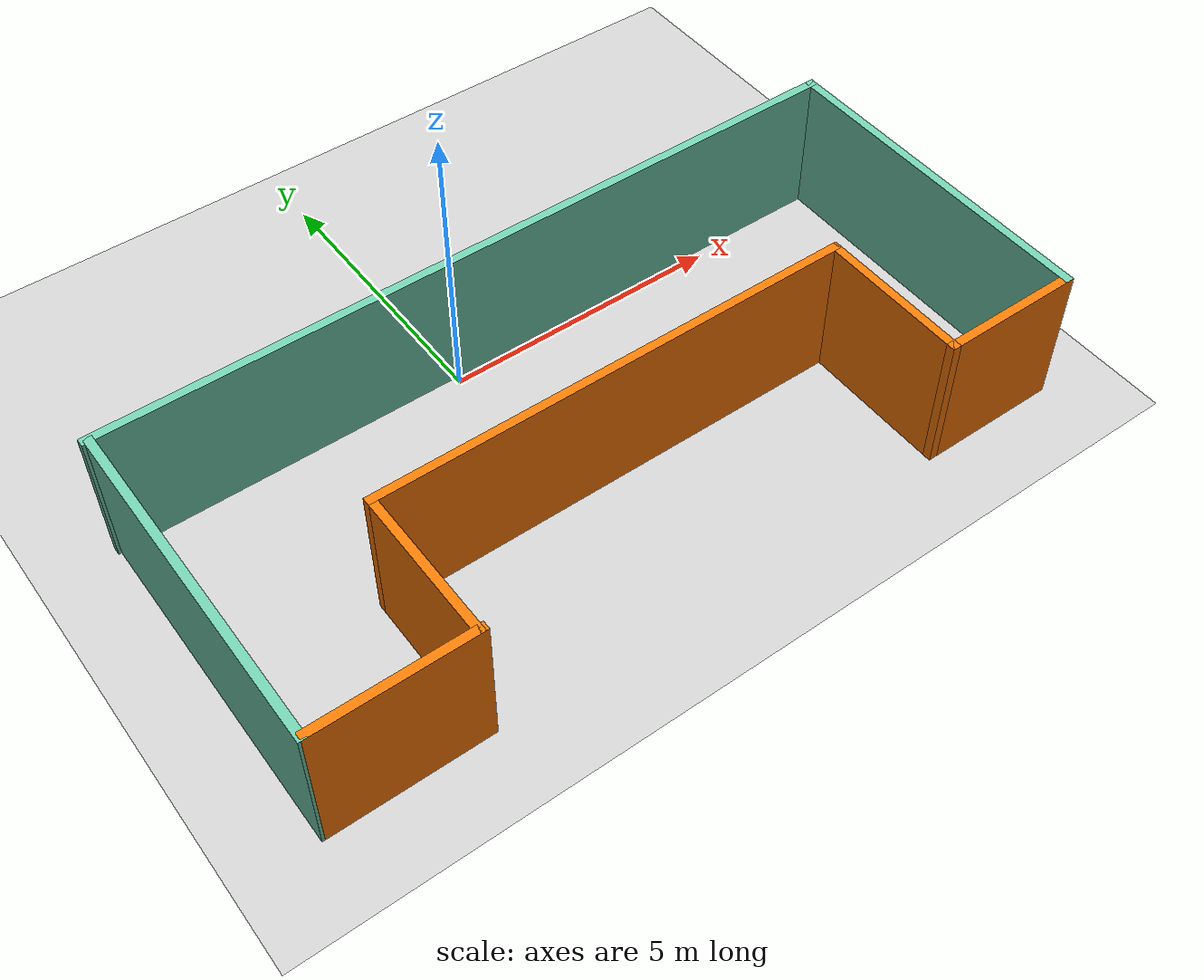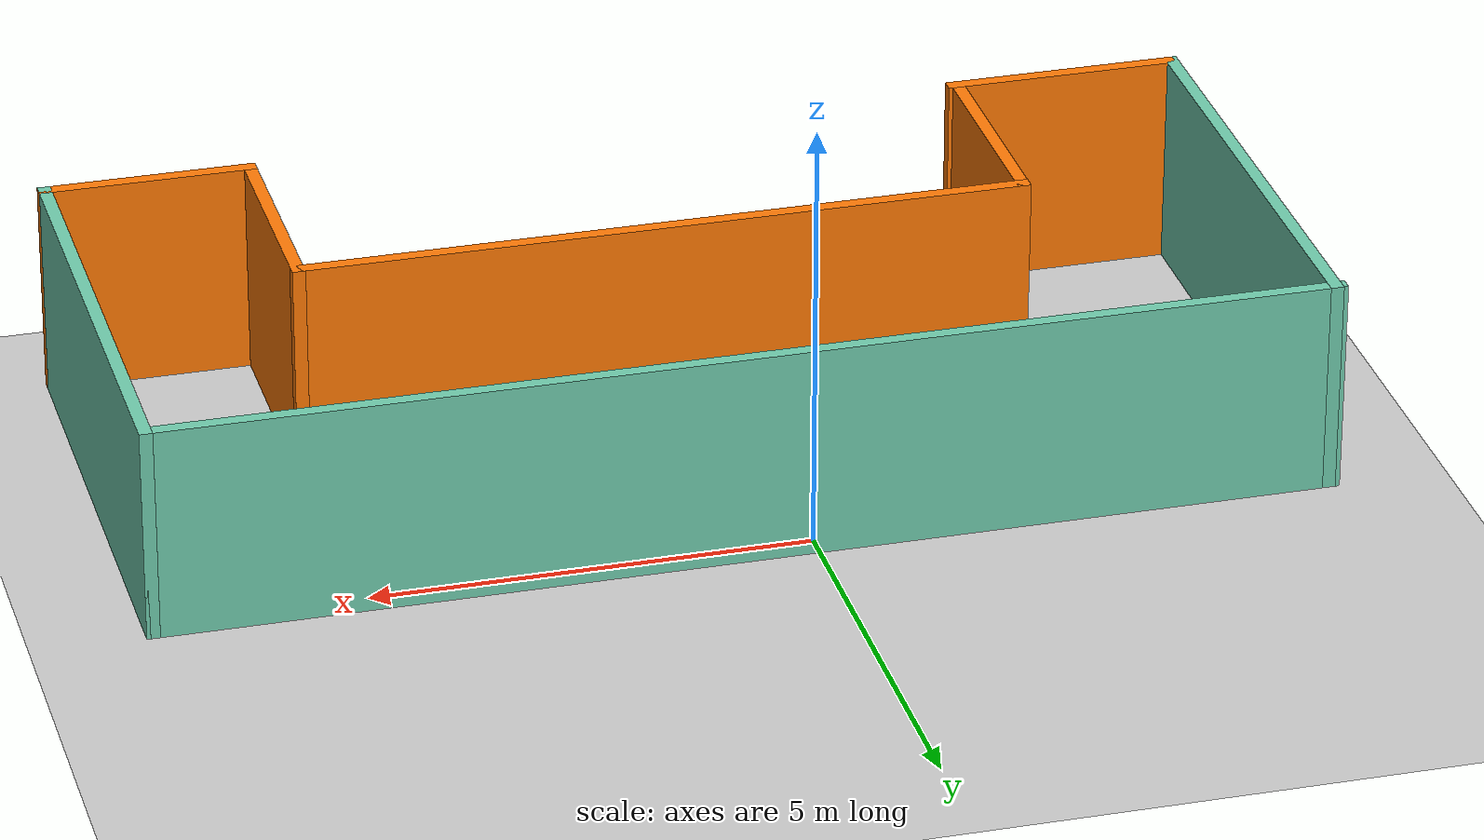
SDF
<sdf version="1.6">
 <world name="default">
  <light name="sun" type="directional">
   <pose>0 0 10 0 -0 0</pose>
   <diffuse>0.8 0.8 0.8 1</diffuse>
   <specular>0.2 0.2 0.2 1</specular>
   <attenuation>
    <range>1000</range>
    <constant>0.9</constant>
    <linear>0.01</linear>
    <quadratic>0.001</quadratic>
   </attenuation>
   <direction>-0.5 0.1 -0.9</direction>
  </light>
  <model name="ground_plane">
   <static>1</static>
   <link name="link">
    <collision name="collision">
     <geometry><plane><normal>0 0 1</normal><size>100 100</size></plane></geometry>
     <surface>
      <contact><collide_bitmask>65535</collide_bitmask></contact>
      <friction><ode><mu>100</mu><mu2>50</mu2></ode></friction>
     </surface>
    </collision>
    <visual name="visual">
     <cast_shadows>0</cast_shadows>
     <geometry><plane><normal>0 0 1</normal><size>100 100</size></plane></geometry>
     <material>
      <script><uri>file://media/materials/scripts/gazebo.material</uri><name>Gazebo/Grey</name></script>
     </material>
    </visual>
   </link>
  </model>
  <gravity>0 0 -9.8</gravity>
  <magnetic_field>6e-06 2.3e-05 -4.2e-05</magnetic_field>
  <atmosphere type="adiabatic"/>
  <physics name="default_physics" default="0" type="ode">
   <max_step_size>0.001</max_step_size>
   <real_time_factor>1</real_time_factor>
   <real_time_update_rate>1000</real_time_update_rate>
  </physics>
  <scene><ambient>0.4 0.4 0.4 1</ambient><background>0.7 0.7 0.7 1</background><shadows>1</shadows></scene>
  <audio><device>default</device></audio>
  <spherical_coordinates>
   <surface_model>EARTH_WGS84</surface_model>
   <latitude_deg>0</latitude_deg>
   <longitude_deg>0</longitude_deg>
   <elevation>0</elevation>
   <heading_deg>0</heading_deg>
  </spherical_coordinates>
  <model name="Untitled">
   <pose>0.747263 -2.7426 0 0 -0 0</pose>
   <link name="Wall_19">
    <collision name="Wall_19_Collision">
     <geometry><box><size>13.5 0.15 2.5</size></box></geometry>
     <pose>0 0 1.25 0 -0 0</pose>
    </collision>
    <visual name="Wall_19_Visual">
     <pose>0 0 1.25 0 -0 0</pose>
     <geometry><box><size>13.5 0.15 2.5</size></box></geometry>
     <material>
      <script><uri>file://media/materials/scripts/gazebo.material</uri><name>Gazebo/Grey</name></script>
      <ambient>0.435294 0.796078 0.67451 1</ambient>
     </material>
     <meta><layer>0</layer></meta>
    </visual>
    <pose>-0 2.93233 0 0 -0 0</pose>
   </link>
   <link name="Wall_20">
    <collision name="Wall_20_Collision">
     <geometry><box><size>6 0.15 2.5</size></box></geometry>
     <pose>0 0 1.25 0 -0 0</pose>
    </collision>
    <visual name="Wall_20_Visual">
     <pose>0 0 1.25 0 -0 0</pose>
     <geometry><box><size>6 0.15 2.5</size></box></geometry>
     <material>
      <script><uri>file://media/materials/scripts/gazebo.material</uri><name>Gazebo/Grey</name></script>
      <ambient>0.435294 0.796078 0.67451 1</ambient>
     </material>
     <meta><layer>0</layer></meta>
    </visual>
    <pose>6.675 0.007334 0 0 -0 -1.5708</pose>
   </link>
   <link name="Wall_21">
    <collision name="Wall_21_Collision">
     <geometry><box><size>2.5 0.15 2.5</size></box></geometry>
     <pose>0 0 1.25 0 -0 0</pose>
    </collision>
    <visual name="Wall_21_Visual">
     <pose>0 0 1.25 0 -0 0</pose>
     <geometry><box><size>2.5 0.15 2.5</size></box></geometry>
     <material>
      <script><uri>file://media/materials/scripts/gazebo.material</uri><name>Gazebo/Grey</name></script>
      <ambient>0.996078 0.47451 0.0196078 1</ambient>
     </material>
     <meta><layer>0</layer></meta>
    </visual>
    <pose>5.5 -2.91767 0 0 -0 3.14159</pose>
   </link>
   <link name="Wall_22">
    <collision name="Wall_22_Collision">
     <geometry><box><size>2.75 0.15 2.5</size></box></geometry>
     <pose>0 0 1.25 0 -0 0</pose>
    </collision>
    <visual name="Wall_22_Visual">
     <pose>0 0 1.25 0 -0 0</pose>
     <geometry><box><size>2.75 0.15 2.5</size></box></geometry>
     <material>
      <script><uri>file://media/materials/scripts/gazebo.material</uri><name>Gazebo/Grey</name></script>
      <ambient>0.996078 0.47451 0.0196078 1</ambient>
     </material>
     <meta><layer>0</layer></meta>
    </visual>
    <pose>4.325 -1.61767 0 0 -0 1.5708</pose>
   </link>
   <link name="Wall_23">
    <collision name="Wall_23_Collision">
     <geometry><box><size>8.5 0.15 2.5</size></box></geometry>
     <pose>0 0 1.25 0 -0 0</pose>
    </collision>
    <visual name="Wall_23_Visual">
     <pose>0 0 1.25 0 -0 0</pose>
     <geometry><box><size>8.5 0.15 2.5</size></box></geometry>
     <material>
      <script><uri>file://media/materials/scripts/gazebo.material</uri><name>Gazebo/Grey</name></script>
      <ambient>0.996078 0.47451 0.0196078 1</ambient>
     </material>
     <meta><layer>0</layer></meta>
    </visual>
    <pose>0.15 -0.317666 0 0 -0 3.14159</pose>
   </link>
   <link name="Wall_24">
    <collision name="Wall_24_Collision">
     <geometry><box><size>2.76467 0.15 2.5</size></box></geometry>
     <pose>0 0 1.25 0 -0 0</pose>
    </collision>
    <visual name="Wall_24_Visual">
     <pose>0 0 1.25 0 -0 0</pose>
     <geometry><box><size>2.76467 0.15 2.5</size></box></geometry>
     <material>
      <script><uri>file://media/materials/scripts/gazebo.material</uri><name>Gazebo/Grey</name></script>
      <ambient>0.996078 0.47451 0.0196078 1</ambient>
     </material>
     <meta><layer>0</layer></meta>
    </visual>
    <pose>-4.025 -1.625 0 0 -0 -1.5708</pose>
   </link>
   <link name="Wall_25">
    <collision name="Wall_25_Collision">
     <geometry><box><size>2.75 0.15 2.5</size></box></geometry>
     <pose>0 0 1.25 0 -0 0</pose>
    </collision>
    <visual name="Wall_25_Visual">
     <pose>0 0 1.25 0 -0 0</pose>
     <geometry><box><size>2.75 0.15 2.5</size></box></geometry>
     <material>
      <script><uri>file://media/materials/scripts/gazebo.material</uri><name>Gazebo/Grey</name></script>
      <ambient>0.996078 0.47451 0.0196078 1</ambient>
     </material>
     <meta><layer>0</layer></meta>
    </visual>
    <pose>-5.27821 -2.93234 0 0 -0 3.14159</pose>
   </link>
   <link name="Wall_26">
    <collision name="Wall_26_Collision">
     <geometry><box><size>6.01467 0.15 2.5</size></box></geometry>
     <pose>0 0 1.25 0 -0 0</pose>
    </collision>
    <visual name="Wall_26_Visual">
     <pose>0 0 1.25 0 -0 0</pose>
     <geometry><box><size>6.01467 0.15 2.5</size></box></geometry>
     <material>
      <script><uri>file://media/materials/scripts/gazebo.material</uri><name>Gazebo/Grey</name></script>
      <ambient>0.435294 0.796078 0.67451 1</ambient>
     </material>
     <meta><layer>0</layer></meta>
    </visual>
    <pose>-6.625 -0 0 0 -0 1.5708</pose>
   </link>
   <static>1</static>
  </model>
 </world>
</sdf>
